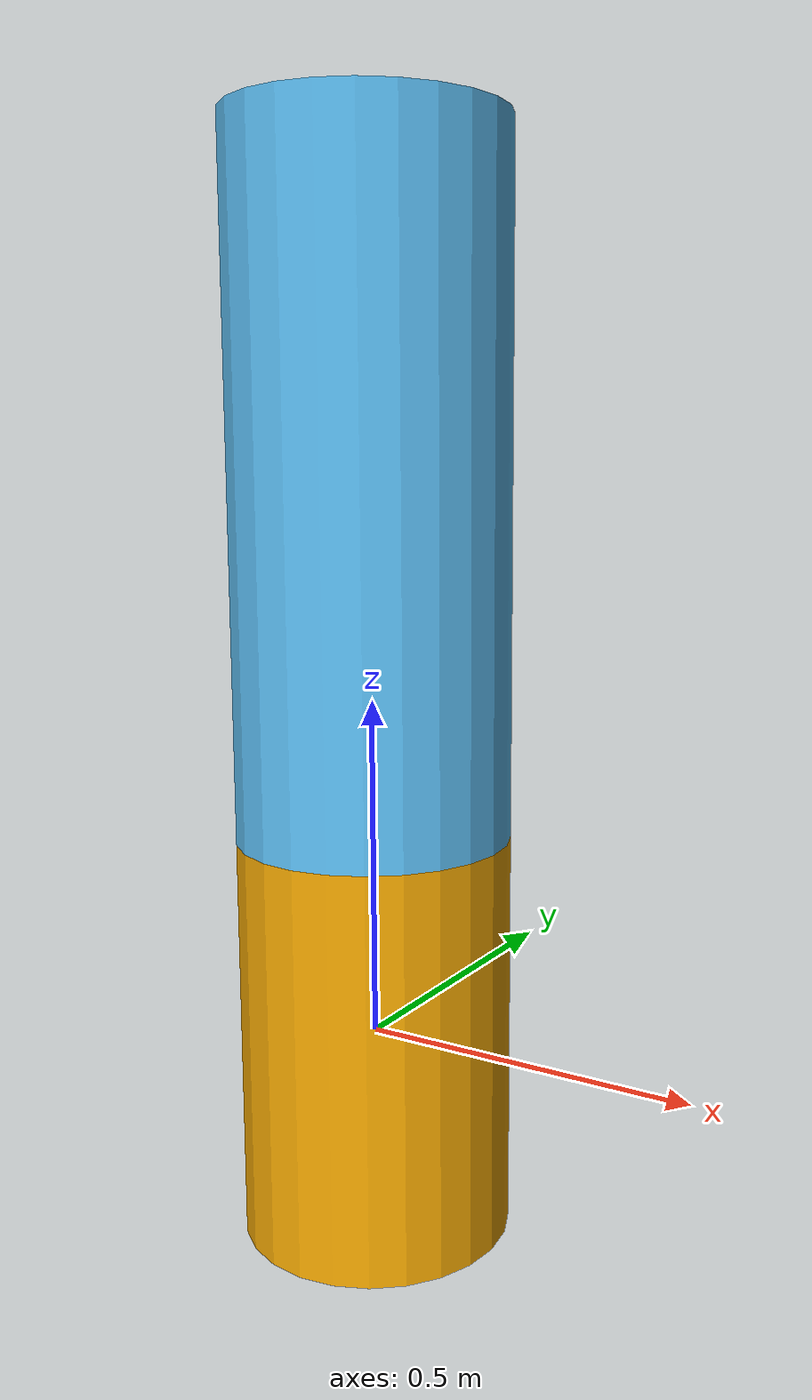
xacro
<?xml version="1.0"?>

<robot name="test_robot">
    <link name="base_link">
        <visual>
            <geometry>
                <cylinder length="0.6" radius="0.2"/>
            </geometry>
            <origin xyz="0.0 0.0 0.0" rpy="0.0 0.0 0.0"/>
        </visual>
    </link>
    <joint name="q1" type="continuous">
        <origin xyz="0.0 0.0 0.3" rpy="0.0 0.0 0.0"/>
        <parent link="base_link"/>
        <child link="link_1"/>
        <axis xyz="0 1 0"/>
    </joint>
    <link name="link_1">
        <visual>
            <geometry>
                <cylinder length="1.0" radius="0.2"/>
            </geometry>
            <origin xyz="0.0 0.0 0.5" rpy="0.0 0.0 0.0"/>
        </visual>
    </link>
</robot>
